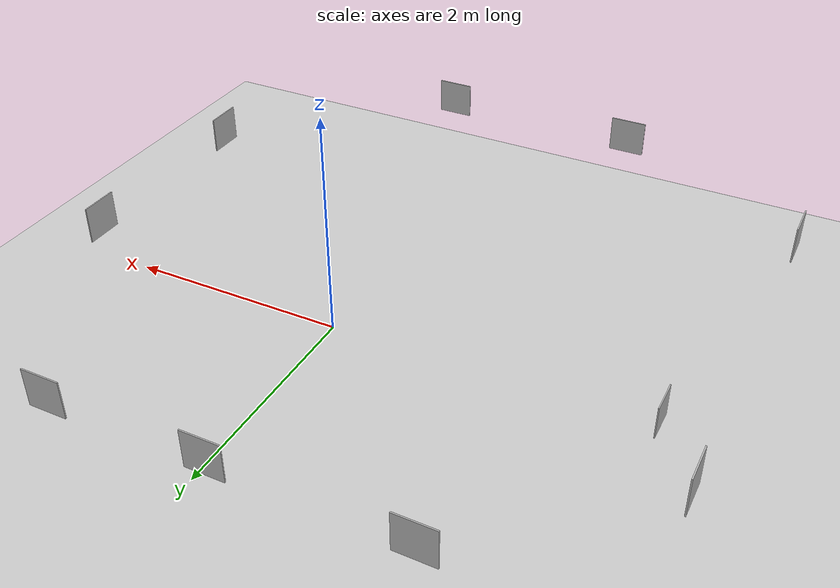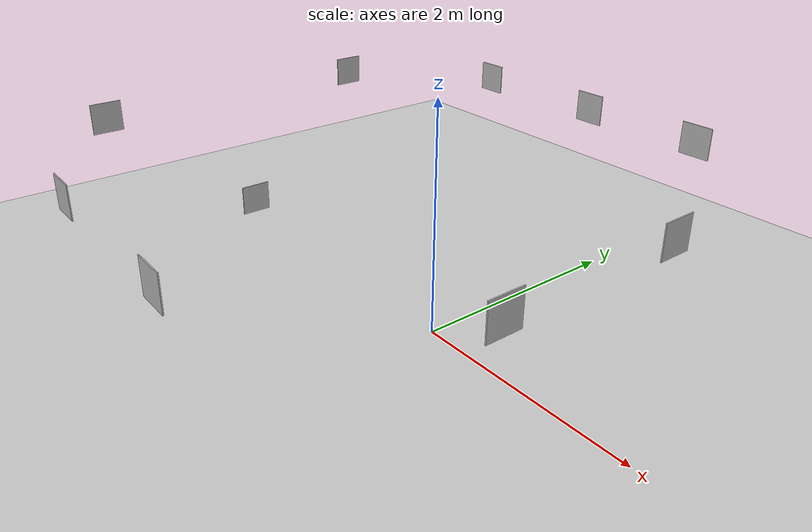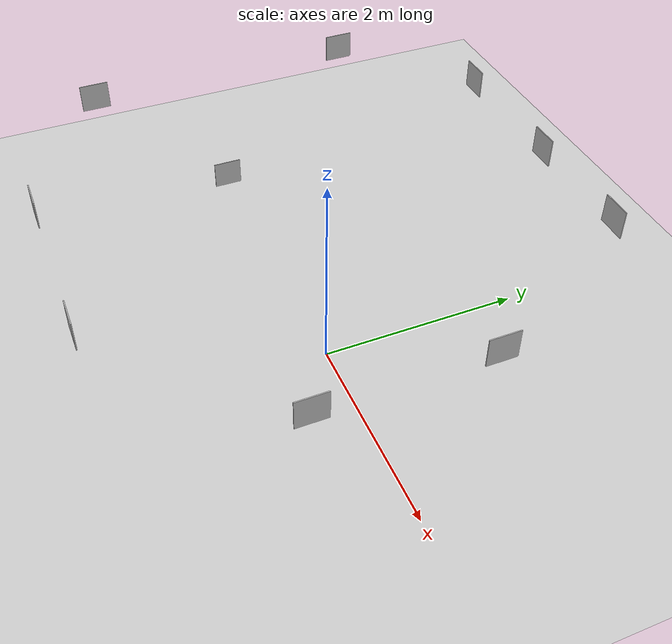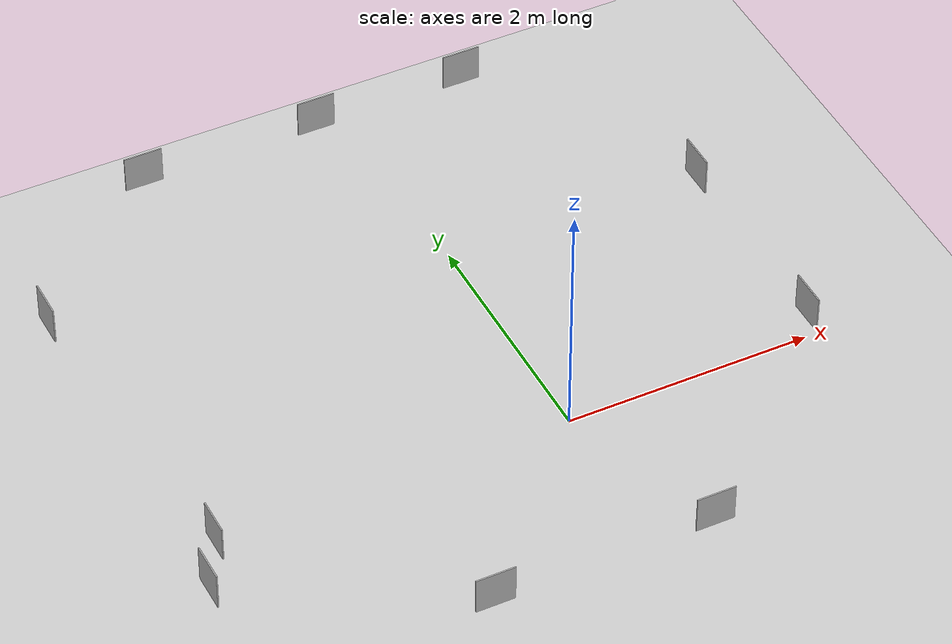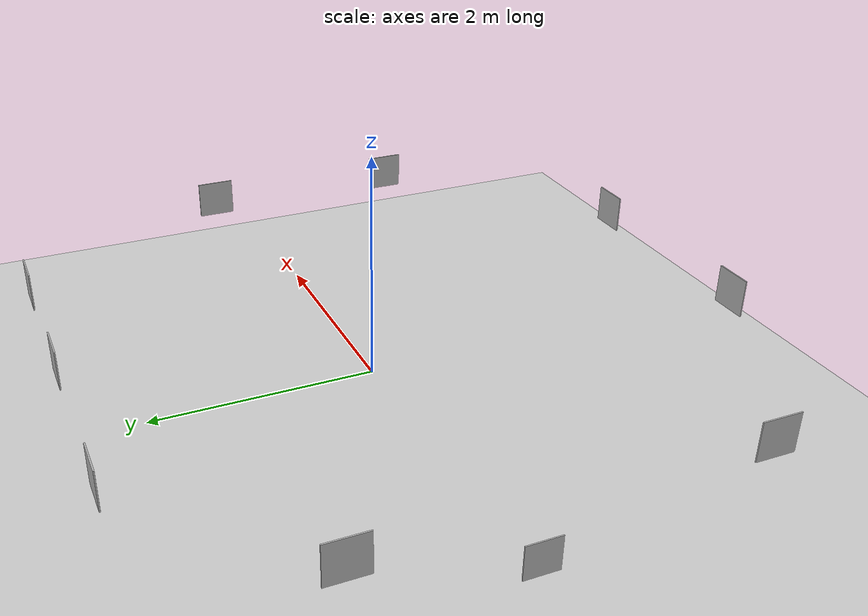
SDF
<sdf version="1.6">
 <world name="default">
  <plugin name="ros_link_attacher_plugin" filename="libgazebo_ros_link_attacher.so"/>
  <light name="sun" type="directional">
   <pose>0 0 10 0 -0 0</pose>
   <diffuse>0.8 0.8 0.8 1</diffuse>
   <specular>0.2 0.2 0.2 1</specular>
   <attenuation>
    <range>1000</range>
    <constant>0.9</constant>
    <linear>0.01</linear>
    <quadratic>0.001</quadratic>
   </attenuation>
   <direction>-0.5 0.1 -0.9</direction>
  </light>
  <model name="ground_plane">
   <static>1</static>
   <link name="link">
    <collision name="collision">
     <geometry><plane><normal>0 0 1</normal><size>100 100</size></plane></geometry>
     <surface>
      <contact><collide_bitmask>65535</collide_bitmask></contact>
      <friction><ode><mu>100</mu><mu2>50</mu2></ode></friction>
     </surface>
    </collision>
    <visual name="visual">
     <cast_shadows>0</cast_shadows>
     <geometry><plane><normal>0 0 1</normal><size>100 100</size></plane></geometry>
     <material>
      <script><uri>file://media/materials/scripts/gazebo.material</uri><name>Gazebo/Grey</name></script>
     </material>
    </visual>
   </link>
  </model>
  <gravity>0 0 -9.8</gravity>
  <magnetic_field>6e-06 2.3e-05 -4.2e-05</magnetic_field>
  <atmosphere type="adiabatic"/>
  <physics name="default_physics" default="0" type="ode">
   <max_step_size>0.001</max_step_size>
   <real_time_factor>1</real_time_factor>
   <real_time_update_rate>1000</real_time_update_rate>
  </physics>
  <scene><ambient>0.4 0.4 0.4 1</ambient><background>0.7 0.7 0.7 1</background><shadows>1</shadows></scene>
  <audio><device>default</device></audio>
  <spherical_coordinates>
   <surface_model>EARTH_WGS84</surface_model>
   <latitude_deg>0</latitude_deg>
   <longitude_deg>0</longitude_deg>
   <elevation>0</elevation>
   <heading_deg>0</heading_deg>
  </spherical_coordinates>
  <model name="Apriltag36_11_00002">
   <link name="main">
    <visual name="main_Visual">
     <geometry><box><size>0.3 0.3 0.01</size></box></geometry>
     <material>
      <script>
       <uri>model://Apriltag36_11_00002/materials/scripts</uri>
       <uri>model://Apriltag36_11_00002/materials/textures</uri>
       <name>Apriltag36_11_00002</name>
      </script>
     </material>
    </visual>
   </link>
   <static>1</static>
   <pose>1.50974 0.900262 1.2 -1.5708 1.57079 -1.5708</pose>
  </model>
  <model name="Apriltag36_11_00000">
   <link name="main">
    <visual name="main_Visual">
     <geometry><box><size>0.3 0.3 0.01</size></box></geometry>
     <material>
      <script>
       <uri>model://Apriltag36_11_00000/materials/scripts</uri>
       <uri>model://Apriltag36_11_00000/materials/textures</uri>
       <name>Apriltag36_11_00000</name>
      </script>
     </material>
    </visual>
   </link>
   <static>1</static>
   <pose>-0.774307 2.69224 1.2 -1.5708 0 0</pose>
  </model>
  <model name="Apriltag36_11_00001">
   <link name="main">
    <visual name="main_Visual">
     <geometry><box><size>0.3 0.3 0.01</size></box></geometry>
     <material>
      <script>
       <uri>model://Apriltag36_11_00001/materials/scripts</uri>
       <uri>model://Apriltag36_11_00001/materials/textures</uri>
       <name>Apriltag36_11_00001</name>
      </script>
     </material>
    </visual>
   </link>
   <static>1</static>
   <pose>-2.18518 2.69224 1.2 -1.5708 0 0</pose>
  </model>
  <model name="Apriltag36_11_00003">
   <link name="main">
    <visual name="main_Visual">
     <geometry><box><size>0.3 0.3 0.01</size></box></geometry>
     <material>
      <script>
       <uri>model://Apriltag36_11_00003/materials/scripts</uri>
       <uri>model://Apriltag36_11_00003/materials/textures</uri>
       <name>Apriltag36_11_00003</name>
      </script>
     </material>
    </visual>
   </link>
   <static>1</static>
   <pose>0.446429 2.69442 1.2 -1.5708 0 0</pose>
  </model>
  <model name="Apriltag36_11_00004">
   <link name="main">
    <visual name="main_Visual">
     <geometry><box><size>0.3 0.3 0.01</size></box></geometry>
     <material>
      <script>
       <uri>model://Apriltag36_11_00004/materials/scripts</uri>
       <uri>model://Apriltag36_11_00004/materials/textures</uri>
       <name>Apriltag36_11_00004</name>
      </script>
     </material>
    </visual>
   </link>
   <static>1</static>
   <pose>-0.068595 -2.24776 1.2 1.5708 -0 0</pose>
  </model>
  <model name="Apriltag36_11_00005">
   <link name="main">
    <visual name="main_Visual">
     <geometry><box><size>0.3 0.3 0.01</size></box></geometry>
     <material>
      <script>
       <uri>model://Apriltag36_11_00005/materials/scripts</uri>
       <uri>model://Apriltag36_11_00005/materials/textures</uri>
       <name>Apriltag36_11_00005</name>
      </script>
     </material>
    </visual>
   </link>
   <static>1</static>
   <pose>-2.86997 -0.031721 0.20 -1.57083 -1.56934 1.56937</pose>
  </model>
  <model name="Apriltag36_11_00006">
   <link name="main">
    <visual name="main_Visual">
     <geometry><box><size>0.3 0.3 0.01</size></box></geometry>
     <material>
      <script>
       <uri>model://Apriltag36_11_00006/materials/scripts</uri>
       <uri>model://Apriltag36_11_00006/materials/textures</uri>
       <name>Apriltag36_11_00006</name>
      </script>
     </material>
    </visual>
   </link>
   <static>1</static>
   <pose>-3.42449 1.57249 1.2 1.5708 -1.57079 -1.5708</pose>
  </model>
  <model name="Apriltag36_11_00007">
   <link name="main">
    <visual name="main_Visual">
     <geometry><box><size>0.3 0.3 0.01</size></box></geometry>
     <material>
      <script>
       <uri>model://Apriltag36_11_00007/materials/scripts</uri>
       <uri>model://Apriltag36_11_00007/materials/textures</uri>
       <name>Apriltag36_11_00007</name>
      </script>
     </material>
    </visual>
   </link>
   <static>1</static>
   <pose>-3.43026 -1.29237 1.2 1.5708 -1.57079 -1.5708</pose>
  </model>
  <model name="Apriltag36_11_00008">
   <link name="main">
    <visual name="main_Visual">
     <geometry><box><size>0.3 0.3 0.01</size></box></geometry>
     <material>
      <script>
       <uri>model://Apriltag36_11_00008/materials/scripts</uri>
       <uri>model://Apriltag36_11_00008/materials/textures</uri>
       <name>Apriltag36_11_00008</name>
      </script>
     </material>
    </visual>
   </link>
   <static>1</static>
   <pose>1.50974 -0.751714 1.2 -1.5708 1.57079 -1.5708</pose>
  </model>
  <model name="Apriltag36_11_00009">
   <link name="main">
    <visual name="main_Visual">
     <geometry><box><size>0.3 0.3 0.01</size></box></geometry>
     <material>
      <script>
       <uri>model://Apriltag36_11_00009/materials/scripts</uri>
       <uri>model://Apriltag36_11_00009/materials/textures</uri>
       <name>Apriltag36_11_00009</name>
      </script>
     </material>
    </visual>
   </link>
   <static>1</static>
   <pose>-1.75193 -2.24776 1.2 1.5708 -0 0</pose>
  </model>
 </world>
</sdf>
